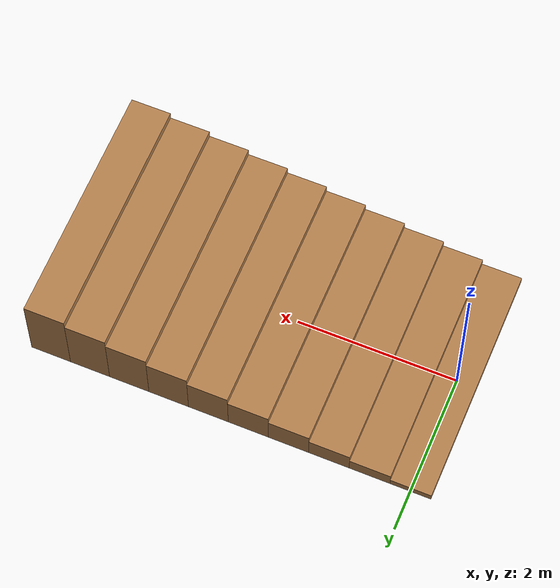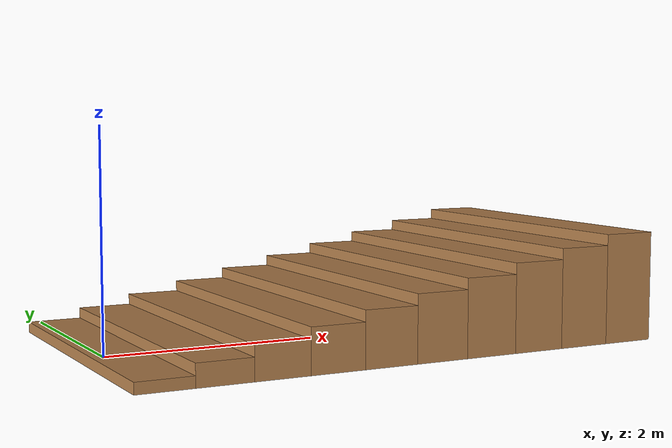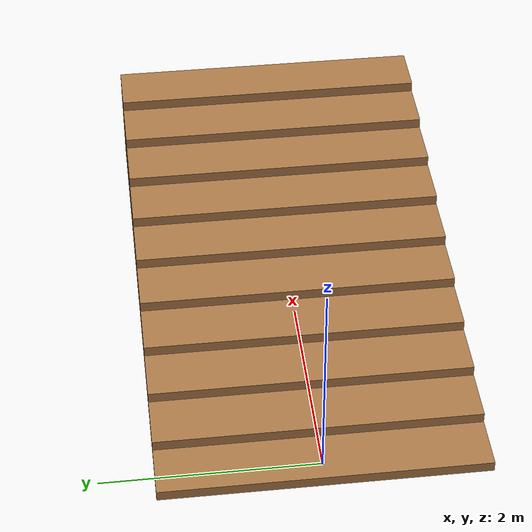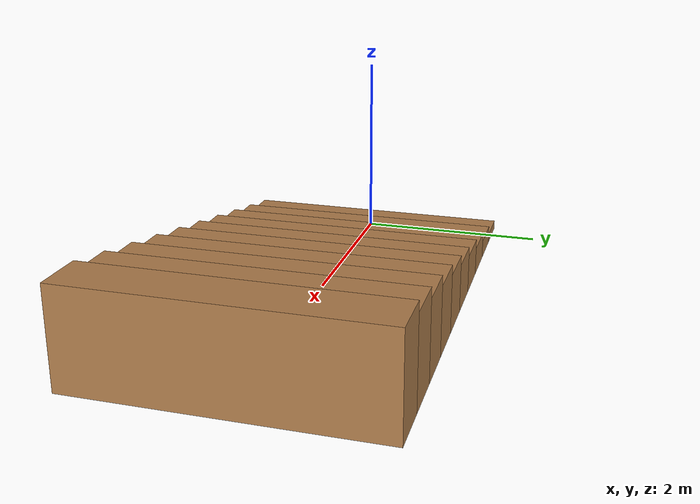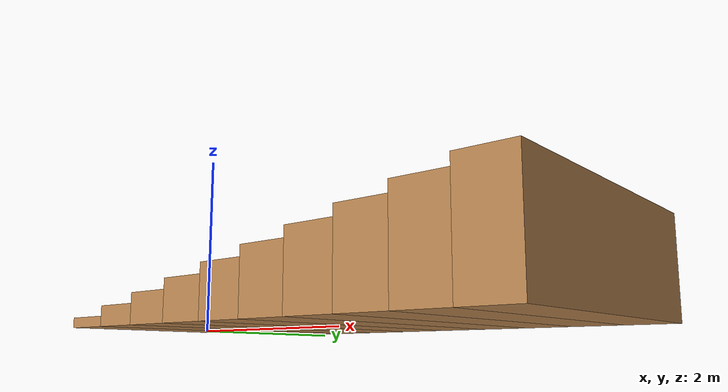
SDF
<?xml version="1.0" ?>
<sdf version="1.4">
  <model name="stairs_talos">
    <static>1</static>
    <link name="link">
            <collision name="stairs_talos_collision0">
        <pose>0.0 0.0 0.05 0.0 0.0 0.0</pose>
        <geometry>
          <box>
            <size>0.5 3.0 0.1</size>
          </box>
        </geometry>
        <surface>
          <bounce />
          <friction>
            <ode>
              <mu>0.7</mu>
              <mu2>0.72</mu2>
            </ode>
          </friction>
          <contact>
            <ode>
              <kp>10000000.0</kp>
              <kd>1.0</kd>
              <min_depth>0.0</min_depth>
              <max_vel>0.0</max_vel>
            </ode>
          </contact>
        </surface>
      </collision>
      <visual name="stairs_talos_visual0">
        <pose>0.0 0.0 0.05 0.0 0.0 0.0</pose>
        <geometry>
          <box>
            <size>0.5 3.0 0.1</size>
          </box>
        </geometry>
        <material>
          <script>
            <uri>file://media/materials/scripts/gazebo.material</uri>
            <name>Gazebo/Wood</name>
          </script>
        </material>
      </visual>
      <collision name="stairs_talos_collision1">
        <pose>0.5 0.0 0.1 0.0 0.0 0.0</pose>
        <geometry>
          <box>
            <size>0.5 3.0 0.2</size>
          </box>
        </geometry>
        <surface>
          <bounce />
          <friction>
            <ode>
              <mu>0.7</mu>
              <mu2>0.72</mu2>
            </ode>
          </friction>
          <contact>
            <ode>
              <kp>10000000.0</kp>
              <kd>1.0</kd>
              <min_depth>0.0</min_depth>
              <max_vel>0.0</max_vel>
            </ode>
          </contact>
        </surface>
      </collision>
      <visual name="stairs_talos_visual1">
        <pose>0.5 0.0 0.1 0.0 0.0 0.0</pose>
        <geometry>
          <box>
            <size>0.5 3.0 0.2</size>
          </box>
        </geometry>
        <material>
          <script>
            <uri>file://media/materials/scripts/gazebo.material</uri>
            <name>Gazebo/Wood</name>
          </script>
        </material>
      </visual>
      <collision name="stairs_talos_collision2">
        <pose>1.0 0.0 0.15 0.0 0.0 0.0</pose>
        <geometry>
          <box>
            <size>0.5 3.0 0.3</size>
          </box>
        </geometry>
        <surface>
          <bounce />
          <friction>
            <ode>
              <mu>0.7</mu>
              <mu2>0.72</mu2>
            </ode>
          </friction>
          <contact>
            <ode>
              <kp>10000000.0</kp>
              <kd>1.0</kd>
              <min_depth>0.0</min_depth>
              <max_vel>0.0</max_vel>
            </ode>
          </contact>
        </surface>
      </collision>
      <visual name="stairs_talos_visual2">
        <pose>1.0 0.0 0.15 0.0 0.0 0.0</pose>
        <geometry>
          <box>
            <size>0.5 3.0 0.3</size>
          </box>
        </geometry>
        <material>
          <script>
            <uri>file://media/materials/scripts/gazebo.material</uri>
            <name>Gazebo/Wood</name>
          </script>
        </material>
      </visual>
      <collision name="stairs_talos_collision3">
        <pose>1.5 0.0 0.2 0.0 0.0 0.0</pose>
        <geometry>
          <box>
            <size>0.5 3.0 0.4</size>
          </box>
        </geometry>
        <surface>
          <bounce />
          <friction>
            <ode>
              <mu>0.7</mu>
              <mu2>0.72</mu2>
            </ode>
          </friction>
          <contact>
            <ode>
              <kp>10000000.0</kp>
              <kd>1.0</kd>
              <min_depth>0.0</min_depth>
              <max_vel>0.0</max_vel>
            </ode>
          </contact>
        </surface>
      </collision>
      <visual name="stairs_talos_visual3">
        <pose>1.5 0.0 0.2 0.0 0.0 0.0</pose>
        <geometry>
          <box>
            <size>0.5 3.0 0.4</size>
          </box>
        </geometry>
        <material>
          <script>
            <uri>file://media/materials/scripts/gazebo.material</uri>
            <name>Gazebo/Wood</name>
          </script>
        </material>
      </visual>
      <collision name="stairs_talos_collision4">
        <pose>2.0 0.0 0.25 0.0 0.0 0.0</pose>
        <geometry>
          <box>
            <size>0.5 3.0 0.5</size>
          </box>
        </geometry>
        <surface>
          <bounce />
          <friction>
            <ode>
              <mu>0.7</mu>
              <mu2>0.72</mu2>
            </ode>
          </friction>
          <contact>
            <ode>
              <kp>10000000.0</kp>
              <kd>1.0</kd>
              <min_depth>0.0</min_depth>
              <max_vel>0.0</max_vel>
            </ode>
          </contact>
        </surface>
      </collision>
      <visual name="stairs_talos_visual4">
        <pose>2.0 0.0 0.25 0.0 0.0 0.0</pose>
        <geometry>
          <box>
            <size>0.5 3.0 0.5</size>
          </box>
        </geometry>
        <material>
          <script>
            <uri>file://media/materials/scripts/gazebo.material</uri>
            <name>Gazebo/Wood</name>
          </script>
        </material>
      </visual>
      <collision name="stairs_talos_collision5">
        <pose>2.5 0.0 0.3 0.0 0.0 0.0</pose>
        <geometry>
          <box>
            <size>0.5 3.0 0.6</size>
          </box>
        </geometry>
        <surface>
          <bounce />
          <friction>
            <ode>
              <mu>0.7</mu>
              <mu2>0.72</mu2>
            </ode>
          </friction>
          <contact>
            <ode>
              <kp>10000000.0</kp>
              <kd>1.0</kd>
              <min_depth>0.0</min_depth>
              <max_vel>0.0</max_vel>
            </ode>
          </contact>
        </surface>
      </collision>
      <visual name="stairs_talos_visual5">
        <pose>2.5 0.0 0.3 0.0 0.0 0.0</pose>
        <geometry>
          <box>
            <size>0.5 3.0 0.6</size>
          </box>
        </geometry>
        <material>
          <script>
            <uri>file://media/materials/scripts/gazebo.material</uri>
            <name>Gazebo/Wood</name>
          </script>
        </material>
      </visual>
      <collision name="stairs_talos_collision6">
        <pose>3.0 0.0 0.35 0.0 0.0 0.0</pose>
        <geometry>
          <box>
            <size>0.5 3.0 0.7</size>
          </box>
        </geometry>
        <surface>
          <bounce />
          <friction>
            <ode>
              <mu>0.7</mu>
              <mu2>0.72</mu2>
            </ode>
          </friction>
          <contact>
            <ode>
              <kp>10000000.0</kp>
              <kd>1.0</kd>
              <min_depth>0.0</min_depth>
              <max_vel>0.0</max_vel>
            </ode>
          </contact>
        </surface>
      </collision>
      <visual name="stairs_talos_visual6">
        <pose>3.0 0.0 0.35 0.0 0.0 0.0</pose>
        <geometry>
          <box>
            <size>0.5 3.0 0.7</size>
          </box>
        </geometry>
        <material>
          <script>
            <uri>file://media/materials/scripts/gazebo.material</uri>
            <name>Gazebo/Wood</name>
          </script>
        </material>
      </visual>
      <collision name="stairs_talos_collision7">
        <pose>3.5 0.0 0.4 0.0 0.0 0.0</pose>
        <geometry>
          <box>
            <size>0.5 3.0 0.8</size>
          </box>
        </geometry>
        <surface>
          <bounce />
          <friction>
            <ode>
              <mu>0.7</mu>
              <mu2>0.72</mu2>
            </ode>
          </friction>
          <contact>
            <ode>
              <kp>10000000.0</kp>
              <kd>1.0</kd>
              <min_depth>0.0</min_depth>
              <max_vel>0.0</max_vel>
            </ode>
          </contact>
        </surface>
      </collision>
      <visual name="stairs_talos_visual7">
        <pose>3.5 0.0 0.4 0.0 0.0 0.0</pose>
        <geometry>
          <box>
            <size>0.5 3.0 0.8</size>
          </box>
        </geometry>
        <material>
          <script>
            <uri>file://media/materials/scripts/gazebo.material</uri>
            <name>Gazebo/Wood</name>
          </script>
        </material>
      </visual>
      <collision name="stairs_talos_collision8">
        <pose>4.0 0.0 0.45 0.0 0.0 0.0</pose>
        <geometry>
          <box>
            <size>0.5 3.0 0.9</size>
          </box>
        </geometry>
        <surface>
          <bounce />
          <friction>
            <ode>
              <mu>0.7</mu>
              <mu2>0.72</mu2>
            </ode>
          </friction>
          <contact>
            <ode>
              <kp>10000000.0</kp>
              <kd>1.0</kd>
              <min_depth>0.0</min_depth>
              <max_vel>0.0</max_vel>
            </ode>
          </contact>
        </surface>
      </collision>
      <visual name="stairs_talos_visual8">
        <pose>4.0 0.0 0.45 0.0 0.0 0.0</pose>
        <geometry>
          <box>
            <size>0.5 3.0 0.9</size>
          </box>
        </geometry>
        <material>
          <script>
            <uri>file://media/materials/scripts/gazebo.material</uri>
            <name>Gazebo/Wood</name>
          </script>
        </material>
      </visual>
      <collision name="stairs_talos_collision9">
        <pose>4.5 0.0 0.5 0.0 0.0 0.0</pose>
        <geometry>
          <box>
            <size>0.5 3.0 1.0</size>
          </box>
        </geometry>
        <surface>
          <bounce />
          <friction>
            <ode>
              <mu>0.7</mu>
              <mu2>0.72</mu2>
            </ode>
          </friction>
          <contact>
            <ode>
              <kp>10000000.0</kp>
              <kd>1.0</kd>
              <min_depth>0.0</min_depth>
              <max_vel>0.0</max_vel>
            </ode>
          </contact>
        </surface>
      </collision>
      <visual name="stairs_talos_visual9">
        <pose>4.5 0.0 0.5 0.0 0.0 0.0</pose>
        <geometry>
          <box>
            <size>0.5 3.0 1.0</size>
          </box>
        </geometry>
        <material>
          <script>
            <uri>file://media/materials/scripts/gazebo.material</uri>
            <name>Gazebo/Wood</name>
          </script>
        </material>
      </visual>

      <velocity_decay>
        <linear>0.000000</linear>
        <angular>0.000000</angular>
      </velocity_decay>
      <self_collide>0</self_collide>
      <kinematic>0</kinematic>
      <gravity>1</gravity>
    </link>
  </model>
</sdf>
